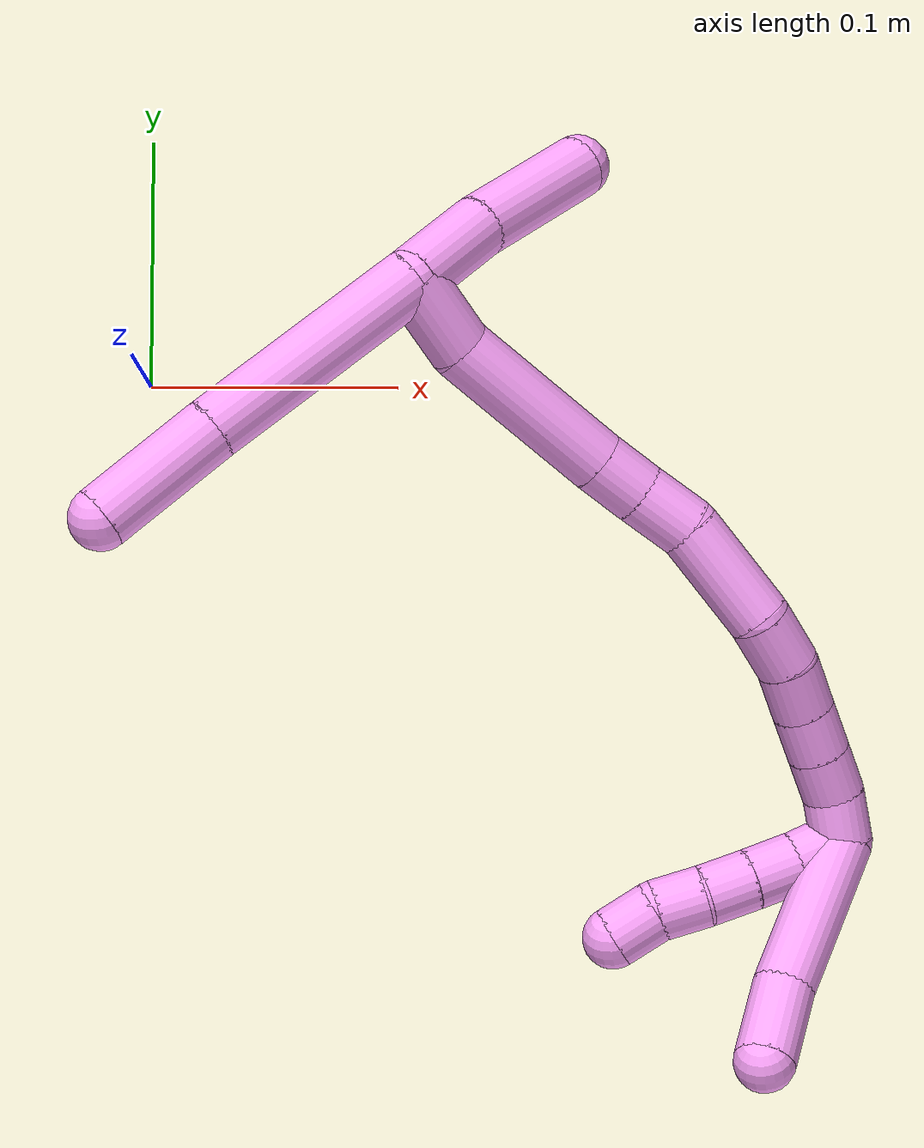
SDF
<sdf version="1.7">
 <world name="default">
  <model name="4">
   <static>0</static>
   <link name="4">
    <collision name="collision-cylinder-e_1_2_8">
     <pose>-0.037104 -0.02865 0.010658 1.21465 -0.881685 -0.633671</pose>
     <geometry><cylinder><radius>0.0125</radius><length>0.096149</length></cylinder></geometry>
     <surface>
      <friction><ode><mu>1.16</mu><mu2>1.16</mu2><slip1>0</slip1><slip2>0</slip2></ode></friction>
      <contact><ode><kp>1e+06</kp><kd>1</kd><max_vel>0</max_vel><min_depth>0.001</min_depth></ode></contact>
     </surface>
    </collision>
    <visual name="visual-cylinder-e_1_2_8">
     <pose>-0.037104 -0.02865 0.010658 1.21465 -0.881685 -0.633671</pose>
     <geometry><cylinder><radius>0.0125</radius><length>0.096149</length></cylinder></geometry>
     <material><ambient>1 0.65098 0.996078 1</ambient></material>
    </visual>
    <collision name="collision-cylinder-e_2_8_6">
     <pose>-0.095487 -0.072559 0.02759 1.18072 -0.911261 -0.634516</pose>
     <geometry><cylinder><radius>0.0125</radius><length>0.053851</length></cylinder></geometry>
     <surface>
      <friction><ode><mu>1.16</mu><mu2>1.16</mu2><slip1>0</slip1><slip2>0</slip2></ode></friction>
      <contact><ode><kp>1e+06</kp><kd>1</kd><max_vel>0</max_vel><min_depth>0.001</min_depth></ode></contact>
     </surface>
    </collision>
    <visual name="visual-cylinder-e_2_8_6">
     <pose>-0.095487 -0.072559 0.02759 1.18072 -0.911261 -0.634516</pose>
     <geometry><cylinder><radius>0.0125</radius><length>0.053851</length></cylinder></geometry>
     <material><ambient>1 0.65098 0.996078 1</ambient></material>
    </visual>
    <collision name="collision-cylinder-e_1_2_9">
     <pose>0.019857 0.006267 0.001451 -1.34333 1.25753 -1.04834</pose>
     <geometry><cylinder><radius>0.0125</radius><length>0.041746</length></cylinder></geometry>
     <surface>
      <friction><ode><mu>1.16</mu><mu2>1.16</mu2><slip1>0</slip1><slip2>0</slip2></ode></friction>
      <contact><ode><kp>1e+06</kp><kd>1</kd><max_vel>0</max_vel><min_depth>0.001</min_depth></ode></contact>
     </surface>
    </collision>
    <visual name="visual-cylinder-e_1_2_9">
     <pose>0.019857 0.006267 0.001451 -1.34333 1.25753 -1.04834</pose>
     <geometry><cylinder><radius>0.0125</radius><length>0.041746</length></cylinder></geometry>
     <material><ambient>1 0.65098 0.996078 1</ambient></material>
    </visual>
    <collision name="collision-cylinder-e_2_9_5">
     <pose>0.066419 0.023636 0.006365 -1.26838 1.16006 -0.898201</pose>
     <geometry><cylinder><radius>0.0125</radius><length>0.058254</length></cylinder></geometry>
     <surface>
      <friction><ode><mu>1.16</mu><mu2>1.16</mu2><slip1>0</slip1><slip2>0</slip2></ode></friction>
      <contact><ode><kp>1e+06</kp><kd>1</kd><max_vel>0</max_vel><min_depth>0.001</min_depth></ode></contact>
     </surface>
    </collision>
    <visual name="visual-cylinder-e_2_9_5">
     <pose>0.066419 0.023636 0.006365 -1.26838 1.16006 -0.898201</pose>
     <geometry><cylinder><radius>0.0125</radius><length>0.058254</length></cylinder></geometry>
     <material><ambient>1 0.65098 0.996078 1</ambient></material>
    </visual>
    <collision name="collision-cylinder-e_1_2_10">
     <pose>-0.000375 0.007529 0.015179 -0.460437 -0.022154 0.005193</pose>
     <geometry><cylinder><radius>0.0125</radius><length>0.033895</length></cylinder></geometry>
     <surface>
      <friction><ode><mu>1.16</mu><mu2>1.16</mu2><slip1>0</slip1><slip2>0</slip2></ode></friction>
      <contact><ode><kp>1e+06</kp><kd>1</kd><max_vel>0</max_vel><min_depth>0.001</min_depth></ode></contact>
     </surface>
    </collision>
    <visual name="visual-cylinder-e_1_2_10">
     <pose>-0.000375 0.007529 0.015179 -0.460437 -0.022154 0.005193</pose>
     <geometry><cylinder><radius>0.0125</radius><length>0.033895</length></cylinder></geometry>
     <material><ambient>1 0.65098 0.996078 1</ambient></material>
    </visual>
    <collision name="collision-cylinder-e_2_10_11">
     <pose>0.000647 0.039005 0.056328 -0.744904 0.03955 -0.015453</pose>
     <geometry><cylinder><radius>0.0125</radius><length>0.070707</length></cylinder></geometry>
     <surface>
      <friction><ode><mu>1.16</mu><mu2>1.16</mu2><slip1>0</slip1><slip2>0</slip2></ode></friction>
      <contact><ode><kp>1e+06</kp><kd>1</kd><max_vel>0</max_vel><min_depth>0.001</min_depth></ode></contact>
     </surface>
    </collision>
    <visual name="visual-cylinder-e_2_10_11">
     <pose>0.000647 0.039005 0.056328 -0.744904 0.03955 -0.015453</pose>
     <geometry><cylinder><radius>0.0125</radius><length>0.070707</length></cylinder></geometry>
     <material><ambient>1 0.65098 0.996078 1</ambient></material>
    </visual>
    <collision name="collision-cylinder-e_3_11_12">
     <pose>0.002502 0.070483 0.08964 -0.798045 0.043459 -0.018326</pose>
     <geometry><cylinder><radius>0.0125</radius><length>0.021055</length></cylinder></geometry>
     <surface>
      <friction><ode><mu>1.16</mu><mu2>1.16</mu2><slip1>0</slip1><slip2>0</slip2></ode></friction>
      <contact><ode><kp>1e+06</kp><kd>1</kd><max_vel>0</max_vel><min_depth>0.001</min_depth></ode></contact>
     </surface>
    </collision>
    <visual name="visual-cylinder-e_3_11_12">
     <pose>0.002502 0.070483 0.08964 -0.798045 0.043459 -0.018326</pose>
     <geometry><cylinder><radius>0.0125</radius><length>0.021055</length></cylinder></geometry>
     <material><ambient>1 0.65098 0.996078 1</ambient></material>
    </visual>
    <collision name="collision-cylinder-e_4_12_13">
     <pose>0.002817 0.087207 0.104595 -0.879227 -0.011985 0.005637</pose>
     <geometry><cylinder><radius>0.0125</radius><length>0.023876</length></cylinder></geometry>
     <surface>
      <friction><ode><mu>1.16</mu><mu2>1.16</mu2><slip1>0</slip1><slip2>0</slip2></ode></friction>
      <contact><ode><kp>1e+06</kp><kd>1</kd><max_vel>0</max_vel><min_depth>0.001</min_depth></ode></contact>
     </surface>
    </collision>
    <visual name="visual-cylinder-e_4_12_13">
     <pose>0.002817 0.087207 0.104595 -0.879227 -0.011985 0.005637</pose>
     <geometry><cylinder><radius>0.0125</radius><length>0.023876</length></cylinder></geometry>
     <material><ambient>1 0.65098 0.996078 1</ambient></material>
    </visual>
    <collision name="collision-cylinder-e_5_13_14">
     <pose>-0.001718 0.110133 0.129345 -0.675521 -0.197364 0.069516</pose>
     <geometry><cylinder><radius>0.0125</radius><length>0.044788</length></cylinder></geometry>
     <surface>
      <friction><ode><mu>1.16</mu><mu2>1.16</mu2><slip1>0</slip1><slip2>0</slip2></ode></friction>
      <contact><ode><kp>1e+06</kp><kd>1</kd><max_vel>0</max_vel><min_depth>0.001</min_depth></ode></contact>
     </surface>
    </collision>
    <visual name="visual-cylinder-e_5_13_14">
     <pose>-0.001718 0.110133 0.129345 -0.675521 -0.197364 0.069516</pose>
     <geometry><cylinder><radius>0.0125</radius><length>0.044788</length></cylinder></geometry>
     <material><ambient>1 0.65098 0.996078 1</ambient></material>
    </visual>
    <collision name="collision-cylinder-e_6_14_15">
     <pose>-0.006681 0.128665 0.157354 -0.415778 -0.048099 0.010148</pose>
     <geometry><cylinder><radius>0.0125</radius><length>0.023798</length></cylinder></geometry>
     <surface>
      <friction><ode><mu>1.16</mu><mu2>1.16</mu2><slip1>0</slip1><slip2>0</slip2></ode></friction>
      <contact><ode><kp>1e+06</kp><kd>1</kd><max_vel>0</max_vel><min_depth>0.001</min_depth></ode></contact>
     </surface>
    </collision>
    <visual name="visual-cylinder-e_6_14_15">
     <pose>-0.006681 0.128665 0.157354 -0.415778 -0.048099 0.010148</pose>
     <geometry><cylinder><radius>0.0125</radius><length>0.023798</length></cylinder></geometry>
     <material><ambient>1 0.65098 0.996078 1</ambient></material>
    </visual>
    <collision name="collision-cylinder-e_7_15_16">
     <pose>-0.008309 0.135941 0.178722 -0.231634 -0.097574 0.01136</pose>
     <geometry><cylinder><radius>0.0125</radius><length>0.02167</length></cylinder></geometry>
     <surface>
      <friction><ode><mu>1.16</mu><mu2>1.16</mu2><slip1>0</slip1><slip2>0</slip2></ode></friction>
      <contact><ode><kp>1e+06</kp><kd>1</kd><max_vel>0</max_vel><min_depth>0.001</min_depth></ode></contact>
     </surface>
    </collision>
    <visual name="visual-cylinder-e_7_15_16">
     <pose>-0.008309 0.135941 0.178722 -0.231634 -0.097574 0.01136</pose>
     <geometry><cylinder><radius>0.0125</radius><length>0.02167</length></cylinder></geometry>
     <material><ambient>1 0.65098 0.996078 1</ambient></material>
    </visual>
    <collision name="collision-cylinder-e_8_16_17">
     <pose>-0.010867 0.141056 0.198789 -0.269046 -0.150203 0.020366</pose>
     <geometry><cylinder><radius>0.0125</radius><length>0.020085</length></cylinder></geometry>
     <surface>
      <friction><ode><mu>1.16</mu><mu2>1.16</mu2><slip1>0</slip1><slip2>0</slip2></ode></friction>
      <contact><ode><kp>1e+06</kp><kd>1</kd><max_vel>0</max_vel><min_depth>0.001</min_depth></ode></contact>
     </surface>
    </collision>
    <visual name="visual-cylinder-e_8_16_17">
     <pose>-0.010867 0.141056 0.198789 -0.269046 -0.150203 0.020366</pose>
     <geometry><cylinder><radius>0.0125</radius><length>0.020085</length></cylinder></geometry>
     <material><ambient>1 0.65098 0.996078 1</ambient></material>
    </visual>
    <collision name="collision-cylinder-e_9_17_18">
     <pose>-0.013872 0.146313 0.217931 -0.267009 -0.150319 0.020226</pose>
     <geometry><cylinder><radius>0.0125</radius><length>0.020069</length></cylinder></geometry>
     <surface>
      <friction><ode><mu>1.16</mu><mu2>1.16</mu2><slip1>0</slip1><slip2>0</slip2></ode></friction>
      <contact><ode><kp>1e+06</kp><kd>1</kd><max_vel>0</max_vel><min_depth>0.001</min_depth></ode></contact>
     </surface>
    </collision>
    <visual name="visual-cylinder-e_9_17_18">
     <pose>-0.013872 0.146313 0.217931 -0.267009 -0.150319 0.020226</pose>
     <geometry><cylinder><radius>0.0125</radius><length>0.020069</length></cylinder></geometry>
     <material><ambient>1 0.65098 0.996078 1</ambient></material>
    </visual>
    <collision name="collision-cylinder-e_10_18_1">
     <pose>-0.019476 0.150932 0.236432 -0.220471 -0.421228 0.047316</pose>
     <geometry><cylinder><radius>0.0125</radius><length>0.020057</length></cylinder></geometry>
     <surface>
      <friction><ode><mu>1.16</mu><mu2>1.16</mu2><slip1>0</slip1><slip2>0</slip2></ode></friction>
      <contact><ode><kp>1e+06</kp><kd>1</kd><max_vel>0</max_vel><min_depth>0.001</min_depth></ode></contact>
     </surface>
    </collision>
    <visual name="visual-cylinder-e_10_18_1">
     <pose>-0.019476 0.150932 0.236432 -0.220471 -0.421228 0.047316</pose>
     <geometry><cylinder><radius>0.0125</radius><length>0.020057</length></cylinder></geometry>
     <material><ambient>1 0.65098 0.996078 1</ambient></material>
    </visual>
    <collision name="collision-cylinder-e_1_1_19">
     <pose>-0.053913 0.148571 0.257075 0.356518 -1.17998 -0.240104</pose>
     <geometry><cylinder><radius>0.0125</radius><length>0.065621</length></cylinder></geometry>
     <surface>
      <friction><ode><mu>1.16</mu><mu2>1.16</mu2><slip1>0</slip1><slip2>0</slip2></ode></friction>
      <contact><ode><kp>1e+06</kp><kd>1</kd><max_vel>0</max_vel><min_depth>0.001</min_depth></ode></contact>
     </surface>
    </collision>
    <visual name="visual-cylinder-e_1_1_19">
     <pose>-0.053913 0.148571 0.257075 0.356518 -1.17998 -0.240104</pose>
     <geometry><cylinder><radius>0.0125</radius><length>0.065621</length></cylinder></geometry>
     <material><ambient>1 0.65098 0.996078 1</ambient></material>
    </visual>
    <collision name="collision-cylinder-e_2_19_4">
     <pose>-0.101025 0.144815 0.272488 -0.162371 -1.3509 0.130188</pose>
     <geometry><cylinder><radius>0.0125</radius><length>0.034379</length></cylinder></geometry>
     <surface>
      <friction><ode><mu>1.16</mu><mu2>1.16</mu2><slip1>0</slip1><slip2>0</slip2></ode></friction>
      <contact><ode><kp>1e+06</kp><kd>1</kd><max_vel>0</max_vel><min_depth>0.001</min_depth></ode></contact>
     </surface>
    </collision>
    <visual name="visual-cylinder-e_2_19_4">
     <pose>-0.101025 0.144815 0.272488 -0.162371 -1.3509 0.130188</pose>
     <geometry><cylinder><radius>0.0125</radius><length>0.034379</length></cylinder></geometry>
     <material><ambient>1 0.65098 0.996078 1</ambient></material>
    </visual>
    <collision name="collision-cylinder-e_1_1_20">
     <pose>-0.029592 0.145082 0.246829 1.38615 -0.64555 -0.541909</pose>
     <geometry><cylinder><radius>0.0125</radius><length>0.02</length></cylinder></geometry>
     <surface>
      <friction><ode><mu>1.16</mu><mu2>1.16</mu2><slip1>0</slip1><slip2>0</slip2></ode></friction>
      <contact><ode><kp>1e+06</kp><kd>1</kd><max_vel>0</max_vel><min_depth>0.001</min_depth></ode></contact>
     </surface>
    </collision>
    <visual name="visual-cylinder-e_1_1_20">
     <pose>-0.029592 0.145082 0.246829 1.38615 -0.64555 -0.541909</pose>
     <geometry><cylinder><radius>0.0125</radius><length>0.02</length></cylinder></geometry>
     <material><ambient>1 0.65098 0.996078 1</ambient></material>
    </visual>
    <collision name="collision-cylinder-e_2_20_21">
     <pose>-0.042129 0.129648 0.248259 1.57563 -0.710222 -0.713379</pose>
     <geometry><cylinder><radius>0.0125</radius><length>0.02</length></cylinder></geometry>
     <surface>
      <friction><ode><mu>1.16</mu><mu2>1.16</mu2><slip1>0</slip1><slip2>0</slip2></ode></friction>
      <contact><ode><kp>1e+06</kp><kd>1</kd><max_vel>0</max_vel><min_depth>0.001</min_depth></ode></contact>
     </surface>
    </collision>
    <visual name="visual-cylinder-e_2_20_21">
     <pose>-0.042129 0.129648 0.248259 1.57563 -0.710222 -0.713379</pose>
     <geometry><cylinder><radius>0.0125</radius><length>0.02</length></cylinder></geometry>
     <material><ambient>1 0.65098 0.996078 1</ambient></material>
    </visual>
    <collision name="collision-cylinder-e_3_21_22">
     <pose>-0.054999 0.114341 0.24813 1.58265 -0.68804 -0.6956</pose>
     <geometry><cylinder><radius>0.0125</radius><length>0.02</length></cylinder></geometry>
     <surface>
      <friction><ode><mu>1.16</mu><mu2>1.16</mu2><slip1>0</slip1><slip2>0</slip2></ode></friction>
      <contact><ode><kp>1e+06</kp><kd>1</kd><max_vel>0</max_vel><min_depth>0.001</min_depth></ode></contact>
     </surface>
    </collision>
    <visual name="visual-cylinder-e_3_21_22">
     <pose>-0.054999 0.114341 0.24813 1.58265 -0.68804 -0.6956</pose>
     <geometry><cylinder><radius>0.0125</radius><length>0.02</length></cylinder></geometry>
     <material><ambient>1 0.65098 0.996078 1</ambient></material>
    </visual>
    <collision name="collision-cylinder-e_4_22_23">
     <pose>-0.066689 0.098175 0.248506 1.51546 -0.563336 -0.534454</pose>
     <geometry><cylinder><radius>0.0125</radius><length>0.02</length></cylinder></geometry>
     <surface>
      <friction><ode><mu>1.16</mu><mu2>1.16</mu2><slip1>0</slip1><slip2>0</slip2></ode></friction>
      <contact><ode><kp>1e+06</kp><kd>1</kd><max_vel>0</max_vel><min_depth>0.001</min_depth></ode></contact>
     </surface>
    </collision>
    <visual name="visual-cylinder-e_4_22_23">
     <pose>-0.066689 0.098175 0.248506 1.51546 -0.563336 -0.534454</pose>
     <geometry><cylinder><radius>0.0125</radius><length>0.02</length></cylinder></geometry>
     <material><ambient>1 0.65098 0.996078 1</ambient></material>
    </visual>
    <collision name="collision-cylinder-e_5_23_3">
     <pose>-0.078067 0.082349 0.251977 1.18456 -0.648186 -0.444608</pose>
     <geometry><cylinder><radius>0.0125</radius><length>0.02</length></cylinder></geometry>
     <surface>
      <friction><ode><mu>1.16</mu><mu2>1.16</mu2><slip1>0</slip1><slip2>0</slip2></ode></friction>
      <contact><ode><kp>1e+06</kp><kd>1</kd><max_vel>0</max_vel><min_depth>0.001</min_depth></ode></contact>
     </surface>
    </collision>
    <visual name="visual-cylinder-e_5_23_3">
     <pose>-0.078067 0.082349 0.251977 1.18456 -0.648186 -0.444608</pose>
     <geometry><cylinder><radius>0.0125</radius><length>0.02</length></cylinder></geometry>
     <material><ambient>1 0.65098 0.996078 1</ambient></material>
    </visual>
    <collision name="collision-sphere-3">
     <pose>-0.084104 0.074964 0.25498 0 -0 0</pose>
     <geometry><sphere><radius>0.0125</radius></sphere></geometry>
     <surface>
      <friction><ode><mu>1.16</mu><mu2>1.16</mu2><slip1>0</slip1><slip2>0</slip2></ode></friction>
      <contact><ode><kp>1e+06</kp><kd>1</kd><max_vel>0</max_vel><min_depth>0.001</min_depth></ode></contact>
     </surface>
    </collision>
    <visual name="visual-sphere-3">
     <pose>-0.084104 0.074964 0.25498 0 -0 0</pose>
     <geometry><sphere><radius>0.0125</radius></sphere></geometry>
     <material><ambient>1 0.65098 0.996078 1</ambient></material>
    </visual>
    <collision name="collision-sphere-23">
     <pose>-0.07203 0.089733 0.248974 0 -0 0</pose>
     <geometry><sphere><radius>0.0125</radius></sphere></geometry>
     <surface>
      <friction><ode><mu>1.16</mu><mu2>1.16</mu2><slip1>0</slip1><slip2>0</slip2></ode></friction>
      <contact><ode><kp>1e+06</kp><kd>1</kd><max_vel>0</max_vel><min_depth>0.001</min_depth></ode></contact>
     </surface>
    </collision>
    <visual name="visual-sphere-23">
     <pose>-0.07203 0.089733 0.248974 0 -0 0</pose>
     <geometry><sphere><radius>0.0125</radius></sphere></geometry>
     <material><ambient>1 0.65098 0.996078 1</ambient></material>
    </visual>
    <collision name="collision-sphere-22">
     <pose>-0.061349 0.106617 0.248039 0 -0 0</pose>
     <geometry><sphere><radius>0.0125</radius></sphere></geometry>
     <surface>
      <friction><ode><mu>1.16</mu><mu2>1.16</mu2><slip1>0</slip1><slip2>0</slip2></ode></friction>
      <contact><ode><kp>1e+06</kp><kd>1</kd><max_vel>0</max_vel><min_depth>0.001</min_depth></ode></contact>
     </surface>
    </collision>
    <visual name="visual-sphere-22">
     <pose>-0.061349 0.106617 0.248039 0 -0 0</pose>
     <geometry><sphere><radius>0.0125</radius></sphere></geometry>
     <material><ambient>1 0.65098 0.996078 1</ambient></material>
    </visual>
    <collision name="collision-sphere-21">
     <pose>-0.048649 0.122066 0.248222 0 -0 0</pose>
     <geometry><sphere><radius>0.0125</radius></sphere></geometry>
     <surface>
      <friction><ode><mu>1.16</mu><mu2>1.16</mu2><slip1>0</slip1><slip2>0</slip2></ode></friction>
      <contact><ode><kp>1e+06</kp><kd>1</kd><max_vel>0</max_vel><min_depth>0.001</min_depth></ode></contact>
     </surface>
    </collision>
    <visual name="visual-sphere-21">
     <pose>-0.048649 0.122066 0.248222 0 -0 0</pose>
     <geometry><sphere><radius>0.0125</radius></sphere></geometry>
     <material><ambient>1 0.65098 0.996078 1</ambient></material>
    </visual>
    <collision name="collision-sphere-20">
     <pose>-0.035609 0.13723 0.248295 0 -0 0</pose>
     <geometry><sphere><radius>0.0125</radius></sphere></geometry>
     <surface>
      <friction><ode><mu>1.16</mu><mu2>1.16</mu2><slip1>0</slip1><slip2>0</slip2></ode></friction>
      <contact><ode><kp>1e+06</kp><kd>1</kd><max_vel>0</max_vel><min_depth>0.001</min_depth></ode></contact>
     </surface>
    </collision>
    <visual name="visual-sphere-20">
     <pose>-0.035609 0.13723 0.248295 0 -0 0</pose>
     <geometry><sphere><radius>0.0125</radius></sphere></geometry>
     <material><ambient>1 0.65098 0.996078 1</ambient></material>
    </visual>
    <collision name="collision-sphere-4">
     <pose>-0.1178 0.145421 0.276189 0 -0 0</pose>
     <geometry><sphere><radius>0.0125</radius></sphere></geometry>
     <surface>
      <friction><ode><mu>1.16</mu><mu2>1.16</mu2><slip1>0</slip1><slip2>0</slip2></ode></friction>
      <contact><ode><kp>1e+06</kp><kd>1</kd><max_vel>0</max_vel><min_depth>0.001</min_depth></ode></contact>
     </surface>
    </collision>
    <visual name="visual-sphere-4">
     <pose>-0.1178 0.145421 0.276189 0 -0 0</pose>
     <geometry><sphere><radius>0.0125</radius></sphere></geometry>
     <material><ambient>1 0.65098 0.996078 1</ambient></material>
    </visual>
    <collision name="collision-sphere-10">
     <pose>-0.000751 0.015057 0.030358 0 -0 0</pose>
     <geometry><sphere><radius>0.0125</radius></sphere></geometry>
     <surface>
      <friction><ode><mu>1.16</mu><mu2>1.16</mu2><slip1>0</slip1><slip2>0</slip2></ode></friction>
      <contact><ode><kp>1e+06</kp><kd>1</kd><max_vel>0</max_vel><min_depth>0.001</min_depth></ode></contact>
     </surface>
    </collision>
    <visual name="visual-sphere-10">
     <pose>-0.000751 0.015057 0.030358 0 -0 0</pose>
     <geometry><sphere><radius>0.0125</radius></sphere></geometry>
     <material><ambient>1 0.65098 0.996078 1</ambient></material>
    </visual>
    <collision name="collision-sphere-5">
     <pose>0.093123 0.034738 0.009829 0 -0 0</pose>
     <geometry><sphere><radius>0.0125</radius></sphere></geometry>
     <surface>
      <friction><ode><mu>1.16</mu><mu2>1.16</mu2><slip1>0</slip1><slip2>0</slip2></ode></friction>
      <contact><ode><kp>1e+06</kp><kd>1</kd><max_vel>0</max_vel><min_depth>0.001</min_depth></ode></contact>
     </surface>
    </collision>
    <visual name="visual-sphere-5">
     <pose>0.093123 0.034738 0.009829 0 -0 0</pose>
     <geometry><sphere><radius>0.0125</radius></sphere></geometry>
     <material><ambient>1 0.65098 0.996078 1</ambient></material>
    </visual>
    <collision name="collision-sphere-6">
     <pose>-0.116766 -0.087818 0.033864 0 -0 0</pose>
     <geometry><sphere><radius>0.0125</radius></sphere></geometry>
     <surface>
      <friction><ode><mu>1.16</mu><mu2>1.16</mu2><slip1>0</slip1><slip2>0</slip2></ode></friction>
      <contact><ode><kp>1e+06</kp><kd>1</kd><max_vel>0</max_vel><min_depth>0.001</min_depth></ode></contact>
     </surface>
    </collision>
    <visual name="visual-sphere-6">
     <pose>-0.116766 -0.087818 0.033864 0 -0 0</pose>
     <geometry><sphere><radius>0.0125</radius></sphere></geometry>
     <material><ambient>1 0.65098 0.996078 1</ambient></material>
    </visual>
    <collision name="collision-sphere-9">
     <pose>0.039714 0.012534 0.002901 0 -0 0</pose>
     <geometry><sphere><radius>0.0125</radius></sphere></geometry>
     <surface>
      <friction><ode><mu>1.16</mu><mu2>1.16</mu2><slip1>0</slip1><slip2>0</slip2></ode></friction>
      <contact><ode><kp>1e+06</kp><kd>1</kd><max_vel>0</max_vel><min_depth>0.001</min_depth></ode></contact>
     </surface>
    </collision>
    <visual name="visual-sphere-9">
     <pose>0.039714 0.012534 0.002901 0 -0 0</pose>
     <geometry><sphere><radius>0.0125</radius></sphere></geometry>
     <material><ambient>1 0.65098 0.996078 1</ambient></material>
    </visual>
    <collision name="collision-sphere-2">
     <geometry><sphere><radius>0.0125</radius></sphere></geometry>
     <surface>
      <friction><ode><mu>1.16</mu><mu2>1.16</mu2><slip1>0</slip1><slip2>0</slip2></ode></friction>
      <contact><ode><kp>1e+06</kp><kd>1</kd><max_vel>0</max_vel><min_depth>0.001</min_depth></ode></contact>
     </surface>
    </collision>
    <visual name="visual-sphere-2">
     <geometry><sphere><radius>0.0125</radius></sphere></geometry>
     <material><ambient>1 0.65098 0.996078 1</ambient></material>
    </visual>
    <collision name="collision-sphere-19">
     <pose>-0.084249 0.144209 0.268788 0 -0 0</pose>
     <geometry><sphere><radius>0.0125</radius></sphere></geometry>
     <surface>
      <friction><ode><mu>1.16</mu><mu2>1.16</mu2><slip1>0</slip1><slip2>0</slip2></ode></friction>
      <contact><ode><kp>1e+06</kp><kd>1</kd><max_vel>0</max_vel><min_depth>0.001</min_depth></ode></contact>
     </surface>
    </collision>
    <visual name="visual-sphere-19">
     <pose>-0.084249 0.144209 0.268788 0 -0 0</pose>
     <geometry><sphere><radius>0.0125</radius></sphere></geometry>
     <material><ambient>1 0.65098 0.996078 1</ambient></material>
    </visual>
    <collision name="collision-sphere-8">
     <pose>-0.074209 -0.0573 0.021316 0 -0 0</pose>
     <geometry><sphere><radius>0.0125</radius></sphere></geometry>
     <surface>
      <friction><ode><mu>1.16</mu><mu2>1.16</mu2><slip1>0</slip1><slip2>0</slip2></ode></friction>
      <contact><ode><kp>1e+06</kp><kd>1</kd><max_vel>0</max_vel><min_depth>0.001</min_depth></ode></contact>
     </surface>
    </collision>
    <visual name="visual-sphere-8">
     <pose>-0.074209 -0.0573 0.021316 0 -0 0</pose>
     <geometry><sphere><radius>0.0125</radius></sphere></geometry>
     <material><ambient>1 0.65098 0.996078 1</ambient></material>
    </visual>
    <collision name="collision-sphere-11">
     <pose>0.002045 0.062952 0.082298 0 -0 0</pose>
     <geometry><sphere><radius>0.0125</radius></sphere></geometry>
     <surface>
      <friction><ode><mu>1.16</mu><mu2>1.16</mu2><slip1>0</slip1><slip2>0</slip2></ode></friction>
      <contact><ode><kp>1e+06</kp><kd>1</kd><max_vel>0</max_vel><min_depth>0.001</min_depth></ode></contact>
     </surface>
    </collision>
    <visual name="visual-sphere-11">
     <pose>0.002045 0.062952 0.082298 0 -0 0</pose>
     <geometry><sphere><radius>0.0125</radius></sphere></geometry>
     <material><ambient>1 0.65098 0.996078 1</ambient></material>
    </visual>
    <collision name="collision-sphere-12">
     <pose>0.00296 0.078013 0.096982 0 -0 0</pose>
     <geometry><sphere><radius>0.0125</radius></sphere></geometry>
     <surface>
      <friction><ode><mu>1.16</mu><mu2>1.16</mu2><slip1>0</slip1><slip2>0</slip2></ode></friction>
      <contact><ode><kp>1e+06</kp><kd>1</kd><max_vel>0</max_vel><min_depth>0.001</min_depth></ode></contact>
     </surface>
    </collision>
    <visual name="visual-sphere-12">
     <pose>0.00296 0.078013 0.096982 0 -0 0</pose>
     <geometry><sphere><radius>0.0125</radius></sphere></geometry>
     <material><ambient>1 0.65098 0.996078 1</ambient></material>
    </visual>
    <collision name="collision-sphere-13">
     <pose>0.002673 0.096402 0.112208 0 -0 0</pose>
     <geometry><sphere><radius>0.0125</radius></sphere></geometry>
     <surface>
      <friction><ode><mu>1.16</mu><mu2>1.16</mu2><slip1>0</slip1><slip2>0</slip2></ode></friction>
      <contact><ode><kp>1e+06</kp><kd>1</kd><max_vel>0</max_vel><min_depth>0.001</min_depth></ode></contact>
     </surface>
    </collision>
    <visual name="visual-sphere-13">
     <pose>0.002673 0.096402 0.112208 0 -0 0</pose>
     <geometry><sphere><radius>0.0125</radius></sphere></geometry>
     <material><ambient>1 0.65098 0.996078 1</ambient></material>
    </visual>
    <collision name="collision-sphere-14">
     <pose>-0.006109 0.123865 0.146481 0 -0 0</pose>
     <geometry><sphere><radius>0.0125</radius></sphere></geometry>
     <surface>
      <friction><ode><mu>1.16</mu><mu2>1.16</mu2><slip1>0</slip1><slip2>0</slip2></ode></friction>
      <contact><ode><kp>1e+06</kp><kd>1</kd><max_vel>0</max_vel><min_depth>0.001</min_depth></ode></contact>
     </surface>
    </collision>
    <visual name="visual-sphere-14">
     <pose>-0.006109 0.123865 0.146481 0 -0 0</pose>
     <geometry><sphere><radius>0.0125</radius></sphere></geometry>
     <material><ambient>1 0.65098 0.996078 1</ambient></material>
    </visual>
    <collision name="collision-sphere-15">
     <pose>-0.007253 0.133465 0.168226 0 -0 0</pose>
     <geometry><sphere><radius>0.0125</radius></sphere></geometry>
     <surface>
      <friction><ode><mu>1.16</mu><mu2>1.16</mu2><slip1>0</slip1><slip2>0</slip2></ode></friction>
      <contact><ode><kp>1e+06</kp><kd>1</kd><max_vel>0</max_vel><min_depth>0.001</min_depth></ode></contact>
     </surface>
    </collision>
    <visual name="visual-sphere-15">
     <pose>-0.007253 0.133465 0.168226 0 -0 0</pose>
     <geometry><sphere><radius>0.0125</radius></sphere></geometry>
     <material><ambient>1 0.65098 0.996078 1</ambient></material>
    </visual>
    <collision name="collision-sphere-16">
     <pose>-0.009364 0.138417 0.189217 0 -0 0</pose>
     <geometry><sphere><radius>0.0125</radius></sphere></geometry>
     <surface>
      <friction><ode><mu>1.16</mu><mu2>1.16</mu2><slip1>0</slip1><slip2>0</slip2></ode></friction>
      <contact><ode><kp>1e+06</kp><kd>1</kd><max_vel>0</max_vel><min_depth>0.001</min_depth></ode></contact>
     </surface>
    </collision>
    <visual name="visual-sphere-16">
     <pose>-0.009364 0.138417 0.189217 0 -0 0</pose>
     <geometry><sphere><radius>0.0125</radius></sphere></geometry>
     <material><ambient>1 0.65098 0.996078 1</ambient></material>
    </visual>
    <collision name="collision-sphere-17">
     <pose>-0.01237 0.143695 0.208362 0 -0 0</pose>
     <geometry><sphere><radius>0.0125</radius></sphere></geometry>
     <surface>
      <friction><ode><mu>1.16</mu><mu2>1.16</mu2><slip1>0</slip1><slip2>0</slip2></ode></friction>
      <contact><ode><kp>1e+06</kp><kd>1</kd><max_vel>0</max_vel><min_depth>0.001</min_depth></ode></contact>
     </surface>
    </collision>
    <visual name="visual-sphere-17">
     <pose>-0.01237 0.143695 0.208362 0 -0 0</pose>
     <geometry><sphere><radius>0.0125</radius></sphere></geometry>
     <material><ambient>1 0.65098 0.996078 1</ambient></material>
    </visual>
    <collision name="collision-sphere-18">
     <pose>-0.015375 0.148931 0.227501 0 -0 0</pose>
     <geometry><sphere><radius>0.0125</radius></sphere></geometry>
     <surface>
      <friction><ode><mu>1.16</mu><mu2>1.16</mu2><slip1>0</slip1><slip2>0</slip2></ode></friction>
      <contact><ode><kp>1e+06</kp><kd>1</kd><max_vel>0</max_vel><min_depth>0.001</min_depth></ode></contact>
     </surface>
    </collision>
    <visual name="visual-sphere-18">
     <pose>-0.015375 0.148931 0.227501 0 -0 0</pose>
     <geometry><sphere><radius>0.0125</radius></sphere></geometry>
     <material><ambient>1 0.65098 0.996078 1</ambient></material>
    </visual>
    <collision name="collision-sphere-1">
     <pose>-0.023576 0.152934 0.245362 0 -0 0</pose>
     <geometry><sphere><radius>0.0125</radius></sphere></geometry>
     <surface>
      <friction><ode><mu>1.16</mu><mu2>1.16</mu2><slip1>0</slip1><slip2>0</slip2></ode></friction>
      <contact><ode><kp>1e+06</kp><kd>1</kd><max_vel>0</max_vel><min_depth>0.001</min_depth></ode></contact>
     </surface>
    </collision>
    <visual name="visual-sphere-1">
     <pose>-0.023576 0.152934 0.245362 0 -0 0</pose>
     <geometry><sphere><radius>0.0125</radius></sphere></geometry>
     <material><ambient>1 0.65098 0.996078 1</ambient></material>
    </visual>
    <inertial>
     <pose>-0.02347 0.063217 0.119273 0 -0 0</pose>
     <mass>0.75</mass>
     <inertia>
      <ixx>6.2e-05</ixx>
      <ixy>0</ixy>
      <ixz>0</ixz>
      <iyy>0.000122</iyy>
      <iyz>0</iyz>
      <izz>0.000128</izz>
     </inertia>
    </inertial>
   </link>
   <pose>0.107221 0.026814 0.116883 2.69959 0.698043 1.13561</pose>
  </model>
 </world>
</sdf>
